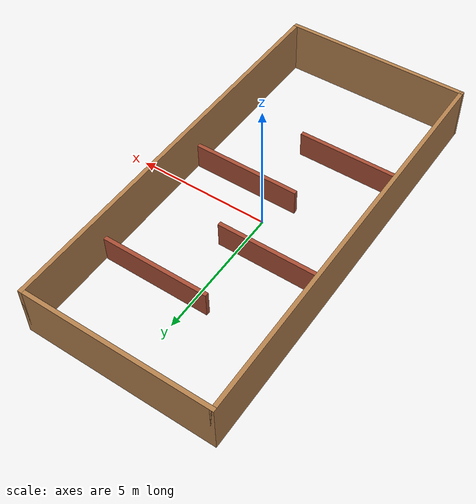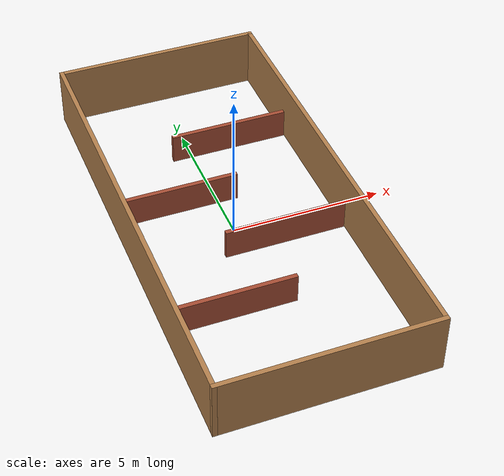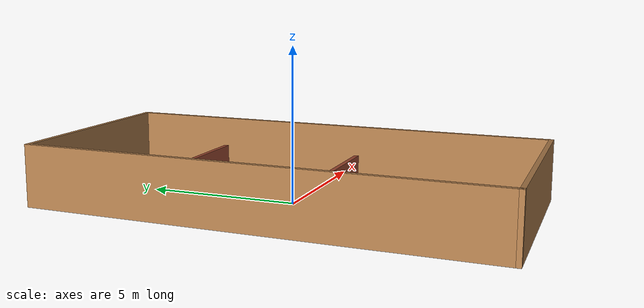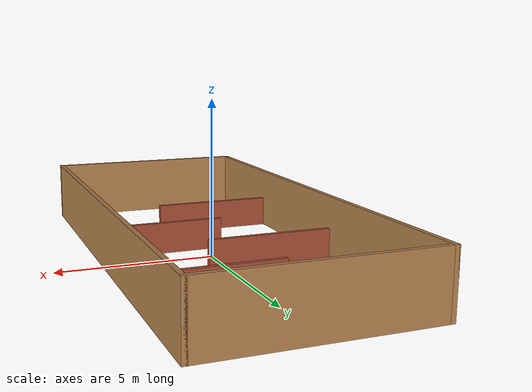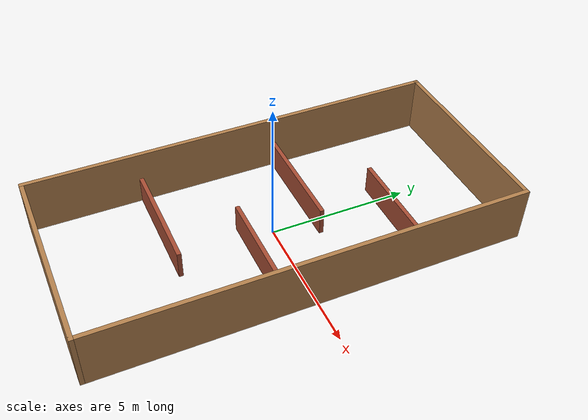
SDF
<?xml version='1.0'?>
<sdf version='1.7'>
  <model name='box_s2'>
    <link name='Wall_26'>
      <pose>-1.33 -3.5 0 0 -0 3.14159</pose>
      <self_collide>0</self_collide>
      <kinematic>0</kinematic>
      <gravity>1</gravity>
      <enable_wind>0</enable_wind>
      <inertial>
        <inertia>
          <ixx>0</ixx>
          <ixy>0</ixy>
          <ixz>0</ixz>
          <iyy>0</iyy>
          <iyz>0</iyz>
          <izz>0</izz>
        </inertia>
        <mass>0</mass>
        <pose>0 0 0 0 -0 0</pose>
      </inertial>
      <visual name='Wall_26_Visual'>
        <pose>0 0 0.5 0 -0 0</pose>
        <geometry>
          <box>
            <size>4 0.15 1</size>
          </box>
        </geometry>
        <material>
          <script>
            <uri>file://media/materials/scripts/gazebo.material</uri>
            <name>Gazebo/Bricks</name>
          </script>
          <ambient>1 1 1 1</ambient>
          <diffuse>1 1 1 1</diffuse>
          <specular>0.2 0.2 0.2 1</specular>
          <emissive>0 0 0 1</emissive>
          <shader type='pixel'>
            <normal_map>__default__</normal_map>
          </shader>
        </material>
        <meta>
          <layer>0</layer>
        </meta>
        <cast_shadows>1</cast_shadows>
        <transparency>0</transparency>
      </visual>
      <collision name='Wall_26_Collision'>
        <laser_retro>0</laser_retro>
        <max_contacts>10</max_contacts>
        <pose>0 0 0.5 0 -0 0</pose>
        <geometry>
          <box>
            <size>4 0.15 1</size>
          </box>
        </geometry>
        <surface>
          <friction>
            <ode>
              <mu>1</mu>
              <mu2>1</mu2>
              <fdir1>0 0 0</fdir1>
              <slip1>0</slip1>
              <slip2>0</slip2>
            </ode>
            <torsional>
              <coefficient>1</coefficient>
              <patch_radius>0</patch_radius>
              <surface_radius>0</surface_radius>
              <use_patch_radius>1</use_patch_radius>
              <ode>
                <slip>0</slip>
              </ode>
            </torsional>
          </friction>
          <bounce>
            <restitution_coefficient>0</restitution_coefficient>
            <threshold>1e+06</threshold>
          </bounce>
          <contact>
            <collide_without_contact>0</collide_without_contact>
            <collide_without_contact_bitmask>1</collide_without_contact_bitmask>
            <collide_bitmask>1</collide_bitmask>
            <ode>
              <soft_cfm>0</soft_cfm>
              <soft_erp>0.2</soft_erp>
              <kp>1e+13</kp>
              <kd>1</kd>
              <max_vel>0.01</max_vel>
              <min_depth>0</min_depth>
            </ode>
            <bullet>
              <split_impulse>1</split_impulse>
              <split_impulse_penetration_threshold>-0.01</split_impulse_penetration_threshold>
              <soft_cfm>0</soft_cfm>
              <soft_erp>0.2</soft_erp>
              <kp>1e+13</kp>
              <kd>1</kd>
            </bullet>
          </contact>
        </surface>
      </collision>
    </link>
    <link name='Wall_24'>
      <pose>-1.33 1.5 0 0 -0 3.14159</pose>
      <self_collide>0</self_collide>
      <kinematic>0</kinematic>
      <gravity>1</gravity>
      <enable_wind>0</enable_wind>
      <inertial>
        <inertia>
          <ixx>0</ixx>
          <ixy>0</ixy>
          <ixz>0</ixz>
          <iyy>0</iyy>
          <iyz>0</iyz>
          <izz>0</izz>
        </inertia>
        <mass>0</mass>
        <pose>0 0 0 0 -0 0</pose>
      </inertial>
      <visual name='Wall_24_Visual'>
        <pose>0 0 0.5 0 -0 0</pose>
        <geometry>
          <box>
            <size>4 0.15 1</size>
          </box>
        </geometry>
        <material>
          <script>
            <uri>file://media/materials/scripts/gazebo.material</uri>
            <name>Gazebo/Bricks</name>
          </script>
          <ambient>1 1 1 1</ambient>
          <diffuse>1 1 1 1</diffuse>
          <specular>0.2 0.2 0.2 1</specular>
          <emissive>0 0 0 1</emissive>
          <shader type='pixel'>
            <normal_map>__default__</normal_map>
          </shader>
        </material>
        <meta>
          <layer>0</layer>
        </meta>
        <cast_shadows>1</cast_shadows>
        <transparency>0</transparency>
      </visual>
      <collision name='Wall_24_Collision'>
        <laser_retro>0</laser_retro>
        <max_contacts>10</max_contacts>
        <pose>0 0 0.5 0 -0 0</pose>
        <geometry>
          <box>
            <size>4 0.15 1</size>
          </box>
        </geometry>
        <surface>
          <friction>
            <ode>
              <mu>1</mu>
              <mu2>1</mu2>
              <fdir1>0 0 0</fdir1>
              <slip1>0</slip1>
              <slip2>0</slip2>
            </ode>
            <torsional>
              <coefficient>1</coefficient>
              <patch_radius>0</patch_radius>
              <surface_radius>0</surface_radius>
              <use_patch_radius>1</use_patch_radius>
              <ode>
                <slip>0</slip>
              </ode>
            </torsional>
          </friction>
          <bounce>
            <restitution_coefficient>0</restitution_coefficient>
            <threshold>1e+06</threshold>
          </bounce>
          <contact>
            <collide_without_contact>0</collide_without_contact>
            <collide_without_contact_bitmask>1</collide_without_contact_bitmask>
            <collide_bitmask>1</collide_bitmask>
            <ode>
              <soft_cfm>0</soft_cfm>
              <soft_erp>0.2</soft_erp>
              <kp>1e+13</kp>
              <kd>1</kd>
              <max_vel>0.01</max_vel>
              <min_depth>0</min_depth>
            </ode>
            <bullet>
              <split_impulse>1</split_impulse>
              <split_impulse_penetration_threshold>-0.01</split_impulse_penetration_threshold>
              <soft_cfm>0</soft_cfm>
              <soft_erp>0.2</soft_erp>
              <kp>1e+13</kp>
              <kd>1</kd>
            </bullet>
          </contact>
        </surface>
      </collision>
    </link>
    <link name='Wall_25'>
      <pose>1.33 -1 0 0 -0 3.14159</pose>
      <self_collide>0</self_collide>
      <kinematic>0</kinematic>
      <gravity>1</gravity>
      <enable_wind>0</enable_wind>
      <inertial>
        <inertia>
          <ixx>0</ixx>
          <ixy>0</ixy>
          <ixz>0</ixz>
          <iyy>0</iyy>
          <iyz>0</iyz>
          <izz>0</izz>
        </inertia>
        <mass>0</mass>
        <pose>0 0 0 0 -0 0</pose>
      </inertial>
      <visual name='Wall_25_Visual'>
        <pose>0 0 0.5 0 -0 0</pose>
        <geometry>
          <box>
            <size>4 0.15 1</size>
          </box>
        </geometry>
        <material>
          <script>
            <uri>file://media/materials/scripts/gazebo.material</uri>
            <name>Gazebo/Bricks</name>
          </script>
          <ambient>1 1 1 1</ambient>
          <diffuse>1 1 1 1</diffuse>
          <specular>0.2 0.2 0.2 1</specular>
          <emissive>0 0 0 1</emissive>
          <shader type='pixel'>
            <normal_map>__default__</normal_map>
          </shader>
        </material>
        <meta>
          <layer>0</layer>
        </meta>
        <cast_shadows>1</cast_shadows>
        <transparency>0</transparency>
      </visual>
      <collision name='Wall_25_Collision'>
        <laser_retro>0</laser_retro>
        <max_contacts>10</max_contacts>
        <pose>0 0 0.5 0 -0 0</pose>
        <geometry>
          <box>
            <size>4 0.15 1</size>
          </box>
        </geometry>
        <surface>
          <friction>
            <ode>
              <mu>1</mu>
              <mu2>1</mu2>
              <fdir1>0 0 0</fdir1>
              <slip1>0</slip1>
              <slip2>0</slip2>
            </ode>
            <torsional>
              <coefficient>1</coefficient>
              <patch_radius>0</patch_radius>
              <surface_radius>0</surface_radius>
              <use_patch_radius>1</use_patch_radius>
              <ode>
                <slip>0</slip>
              </ode>
            </torsional>
          </friction>
          <bounce>
            <restitution_coefficient>0</restitution_coefficient>
            <threshold>1e+06</threshold>
          </bounce>
          <contact>
            <collide_without_contact>0</collide_without_contact>
            <collide_without_contact_bitmask>1</collide_without_contact_bitmask>
            <collide_bitmask>1</collide_bitmask>
            <ode>
              <soft_cfm>0</soft_cfm>
              <soft_erp>0.2</soft_erp>
              <kp>1e+13</kp>
              <kd>1</kd>
              <max_vel>0.01</max_vel>
              <min_depth>0</min_depth>
            </ode>
            <bullet>
              <split_impulse>1</split_impulse>
              <split_impulse_penetration_threshold>-0.01</split_impulse_penetration_threshold>
              <soft_cfm>0</soft_cfm>
              <soft_erp>0.2</soft_erp>
              <kp>1e+13</kp>
              <kd>1</kd>
            </bullet>
          </contact>
        </surface>
      </collision>
    </link>
    <link name='Wall_27'>
      <pose>1.33 4 0 0 -0 3.14159</pose>
      <self_collide>0</self_collide>
      <kinematic>0</kinematic>
      <gravity>1</gravity>
      <enable_wind>0</enable_wind>
      <inertial>
        <inertia>
          <ixx>0</ixx>
          <ixy>0</ixy>
          <ixz>0</ixz>
          <iyy>0</iyy>
          <iyz>0</iyz>
          <izz>0</izz>
        </inertia>
        <mass>0</mass>
        <pose>0 0 0 0 -0 0</pose>
      </inertial>
      <visual name='Wall_27_Visual'>
        <pose>0 0 0.5 0 -0 0</pose>
        <geometry>
          <box>
            <size>4 0.15 1</size>
          </box>
        </geometry>
        <material>
          <script>
            <uri>file://media/materials/scripts/gazebo.material</uri>
            <name>Gazebo/Bricks</name>
          </script>
          <ambient>1 1 1 1</ambient>
          <diffuse>1 1 1 1</diffuse>
          <specular>0.2 0.2 0.2 1</specular>
          <emissive>0 0 0 1</emissive>
          <shader type='pixel'>
            <normal_map>__default__</normal_map>
          </shader>
        </material>
        <meta>
          <layer>0</layer>
        </meta>
        <cast_shadows>1</cast_shadows>
        <transparency>0</transparency>
      </visual>
      <collision name='Wall_27_Collision'>
        <laser_retro>0</laser_retro>
        <max_contacts>10</max_contacts>
        <pose>0 0 0.5 0 -0 0</pose>
        <geometry>
          <box>
            <size>4 0.15 1</size>
          </box>
        </geometry>
        <surface>
          <friction>
            <ode>
              <mu>1</mu>
              <mu2>1</mu2>
              <fdir1>0 0 0</fdir1>
              <slip1>0</slip1>
              <slip2>0</slip2>
            </ode>
            <torsional>
              <coefficient>1</coefficient>
              <patch_radius>0</patch_radius>
              <surface_radius>0</surface_radius>
              <use_patch_radius>1</use_patch_radius>
              <ode>
                <slip>0</slip>
              </ode>
            </torsional>
          </friction>
          <bounce>
            <restitution_coefficient>0</restitution_coefficient>
            <threshold>1e+06</threshold>
          </bounce>
          <contact>
            <collide_without_contact>0</collide_without_contact>
            <collide_without_contact_bitmask>1</collide_without_contact_bitmask>
            <collide_bitmask>1</collide_bitmask>
            <ode>
              <soft_cfm>0</soft_cfm>
              <soft_erp>0.2</soft_erp>
              <kp>1e+13</kp>
              <kd>1</kd>
              <max_vel>0.01</max_vel>
              <min_depth>0</min_depth>
            </ode>
            <bullet>
              <split_impulse>1</split_impulse>
              <split_impulse_penetration_threshold>-0.01</split_impulse_penetration_threshold>
              <soft_cfm>0</soft_cfm>
              <soft_erp>0.2</soft_erp>
              <kp>1e+13</kp>
              <kd>1</kd>
            </bullet>
          </contact>
        </surface>
      </collision>
    </link>
    <link name='Wall_6'>
      <pose>0 7.425 0 0 -0 0</pose>
      <self_collide>0</self_collide>
      <kinematic>0</kinematic>
      <gravity>1</gravity>
      <enable_wind>0</enable_wind>
      <inertial>
        <mass>1</mass>
        <pose>0 0 0 0 -0 0</pose>
        <inertia>
          <ixx>1</ixx>
          <ixy>0</ixy>
          <ixz>0</ixz>
          <iyy>1</iyy>
          <iyz>0</iyz>
          <izz>1</izz>
        </inertia>
      </inertial>
      <visual name='Wall_6_Visual'>
        <pose>0 0 1 0 -0 0</pose>
        <geometry>
          <box>
            <size>7 0.15 2</size>
          </box>
        </geometry>
        <material>
          <script>
            <uri>file://media/materials/scripts/gazebo.material</uri>
            <name>Gazebo/Wood</name>
          </script>
          <ambient>1 1 1 1</ambient>
          <diffuse>1 1 1 1</diffuse>
          <specular>0.2 0.2 0.2 1</specular>
          <emissive>0 0 0 1</emissive>
          <shader type='pixel'>
            <normal_map>__default__</normal_map>
          </shader>
        </material>
        <meta>
          <layer>0</layer>
        </meta>
        <cast_shadows>1</cast_shadows>
        <transparency>0</transparency>
      </visual>
      <collision name='Wall_6_Collision'>
        <laser_retro>0</laser_retro>
        <max_contacts>10</max_contacts>
        <pose>0 0 1 0 -0 0</pose>
        <geometry>
          <box>
            <size>7 0.15 2</size>
          </box>
        </geometry>
        <surface>
          <friction>
            <ode>
              <mu>1</mu>
              <mu2>1</mu2>
              <fdir1>0 0 0</fdir1>
              <slip1>0</slip1>
              <slip2>0</slip2>
            </ode>
            <torsional>
              <coefficient>1</coefficient>
              <patch_radius>0</patch_radius>
              <surface_radius>0</surface_radius>
              <use_patch_radius>1</use_patch_radius>
              <ode>
                <slip>0</slip>
              </ode>
            </torsional>
          </friction>
          <bounce>
            <restitution_coefficient>0</restitution_coefficient>
            <threshold>1e+06</threshold>
          </bounce>
          <contact>
            <collide_without_contact>0</collide_without_contact>
            <collide_without_contact_bitmask>1</collide_without_contact_bitmask>
            <collide_bitmask>1</collide_bitmask>
            <ode>
              <soft_cfm>0</soft_cfm>
              <soft_erp>0.2</soft_erp>
              <kp>1e+13</kp>
              <kd>1</kd>
              <max_vel>0.01</max_vel>
              <min_depth>0</min_depth>
            </ode>
            <bullet>
              <split_impulse>1</split_impulse>
              <split_impulse_penetration_threshold>-0.01</split_impulse_penetration_threshold>
              <soft_cfm>0</soft_cfm>
              <soft_erp>0.2</soft_erp>
              <kp>1e+13</kp>
              <kd>1</kd>
            </bullet>
          </contact>
        </surface>
      </collision>
    </link>
    <link name='Wall_7'>
      <pose>3.425 0 0 0 0 -1.5708</pose>
      <self_collide>0</self_collide>
      <kinematic>0</kinematic>
      <gravity>1</gravity>
      <enable_wind>0</enable_wind>
      <inertial>
        <mass>1</mass>
        <pose>0 0 0 0 -0 0</pose>
        <inertia>
          <ixx>1</ixx>
          <ixy>0</ixy>
          <ixz>0</ixz>
          <iyy>1</iyy>
          <iyz>0</iyz>
          <izz>1</izz>
        </inertia>
      </inertial>
      <visual name='Wall_7_Visual'>
        <pose>0 0 1 0 -0 0</pose>
        <geometry>
          <box>
            <size>15 0.15 2</size>
          </box>
        </geometry>
        <material>
          <script>
            <uri>file://media/materials/scripts/gazebo.material</uri>
            <name>Gazebo/Wood</name>
          </script>
          <ambient>1 1 1 1</ambient>
          <diffuse>1 1 1 1</diffuse>
          <specular>0.2 0.2 0.2 1</specular>
          <emissive>0 0 0 1</emissive>
          <shader type='pixel'>
            <normal_map>__default__</normal_map>
          </shader>
        </material>
        <meta>
          <layer>0</layer>
        </meta>
        <cast_shadows>1</cast_shadows>
        <transparency>0</transparency>
      </visual>
      <collision name='Wall_7_Collision'>
        <laser_retro>0</laser_retro>
        <max_contacts>10</max_contacts>
        <pose>0 0 1 0 -0 0</pose>
        <geometry>
          <box>
            <size>15 0.15 2</size>
          </box>
        </geometry>
        <surface>
          <friction>
            <ode>
              <mu>1</mu>
              <mu2>1</mu2>
              <fdir1>0 0 0</fdir1>
              <slip1>0</slip1>
              <slip2>0</slip2>
            </ode>
            <torsional>
              <coefficient>1</coefficient>
              <patch_radius>0</patch_radius>
              <surface_radius>0</surface_radius>
              <use_patch_radius>1</use_patch_radius>
              <ode>
                <slip>0</slip>
              </ode>
            </torsional>
          </friction>
          <bounce>
            <restitution_coefficient>0</restitution_coefficient>
            <threshold>1e+06</threshold>
          </bounce>
          <contact>
            <collide_without_contact>0</collide_without_contact>
            <collide_without_contact_bitmask>1</collide_without_contact_bitmask>
            <collide_bitmask>1</collide_bitmask>
            <ode>
              <soft_cfm>0</soft_cfm>
              <soft_erp>0.2</soft_erp>
              <kp>1e+13</kp>
              <kd>1</kd>
              <max_vel>0.01</max_vel>
              <min_depth>0</min_depth>
            </ode>
            <bullet>
              <split_impulse>1</split_impulse>
              <split_impulse_penetration_threshold>-0.01</split_impulse_penetration_threshold>
              <soft_cfm>0</soft_cfm>
              <soft_erp>0.2</soft_erp>
              <kp>1e+13</kp>
              <kd>1</kd>
            </bullet>
          </contact>
        </surface>
      </collision>
    </link>
    <link name='Wall_8'>
      <pose>0 -7.425 0 0 -0 3.14159</pose>
      <self_collide>0</self_collide>
      <kinematic>0</kinematic>
      <gravity>1</gravity>
      <enable_wind>0</enable_wind>
      <inertial>
        <mass>1</mass>
        <pose>0 0 0 0 -0 0</pose>
        <inertia>
          <ixx>1</ixx>
          <ixy>0</ixy>
          <ixz>0</ixz>
          <iyy>1</iyy>
          <iyz>0</iyz>
          <izz>1</izz>
        </inertia>
      </inertial>
      <visual name='Wall_8_Visual'>
        <pose>0 0 1 0 -0 0</pose>
        <geometry>
          <box>
            <size>7 0.15 2</size>
          </box>
        </geometry>
        <material>
          <script>
            <uri>file://media/materials/scripts/gazebo.material</uri>
            <name>Gazebo/Wood</name>
          </script>
          <ambient>1 1 1 1</ambient>
          <diffuse>1 1 1 1</diffuse>
          <specular>0.2 0.2 0.2 1</specular>
          <emissive>0 0 0 1</emissive>
          <shader type='pixel'>
            <normal_map>__default__</normal_map>
          </shader>
        </material>
        <meta>
          <layer>0</layer>
        </meta>
        <cast_shadows>1</cast_shadows>
        <transparency>0</transparency>
      </visual>
      <collision name='Wall_8_Collision'>
        <laser_retro>0</laser_retro>
        <max_contacts>10</max_contacts>
        <pose>0 0 1 0 -0 0</pose>
        <geometry>
          <box>
            <size>7 0.15 2</size>
          </box>
        </geometry>
        <surface>
          <friction>
            <ode>
              <mu>1</mu>
              <mu2>1</mu2>
              <fdir1>0 0 0</fdir1>
              <slip1>0</slip1>
              <slip2>0</slip2>
            </ode>
            <torsional>
              <coefficient>1</coefficient>
              <patch_radius>0</patch_radius>
              <surface_radius>0</surface_radius>
              <use_patch_radius>1</use_patch_radius>
              <ode>
                <slip>0</slip>
              </ode>
            </torsional>
          </friction>
          <bounce>
            <restitution_coefficient>0</restitution_coefficient>
            <threshold>1e+06</threshold>
          </bounce>
          <contact>
            <collide_without_contact>0</collide_without_contact>
            <collide_without_contact_bitmask>1</collide_without_contact_bitmask>
            <collide_bitmask>1</collide_bitmask>
            <ode>
              <soft_cfm>0</soft_cfm>
              <soft_erp>0.2</soft_erp>
              <kp>1e+13</kp>
              <kd>1</kd>
              <max_vel>0.01</max_vel>
              <min_depth>0</min_depth>
            </ode>
            <bullet>
              <split_impulse>1</split_impulse>
              <split_impulse_penetration_threshold>-0.01</split_impulse_penetration_threshold>
              <soft_cfm>0</soft_cfm>
              <soft_erp>0.2</soft_erp>
              <kp>1e+13</kp>
              <kd>1</kd>
            </bullet>
          </contact>
        </surface>
      </collision>
    </link>
    <link name='Wall_9'>
      <pose>-3.425 0 0 0 -0 1.5708</pose>
      <self_collide>0</self_collide>
      <kinematic>0</kinematic>
      <gravity>1</gravity>
      <enable_wind>0</enable_wind>
      <inertial>
        <mass>1</mass>
        <pose>0 0 0 0 -0 0</pose>
        <inertia>
          <ixx>1</ixx>
          <ixy>0</ixy>
          <ixz>0</ixz>
          <iyy>1</iyy>
          <iyz>0</iyz>
          <izz>1</izz>
        </inertia>
      </inertial>
      <visual name='Wall_9_Visual'>
        <pose>0 0 1 0 -0 0</pose>
        <geometry>
          <box>
            <size>15 0.15 2</size>
          </box>
        </geometry>
        <material>
          <script>
            <uri>file://media/materials/scripts/gazebo.material</uri>
            <name>Gazebo/Wood</name>
          </script>
          <ambient>1 1 1 1</ambient>
          <diffuse>1 1 1 1</diffuse>
          <specular>0.2 0.2 0.2 1</specular>
          <emissive>0 0 0 1</emissive>
          <shader type='pixel'>
            <normal_map>__default__</normal_map>
          </shader>
        </material>
        <meta>
          <layer>0</layer>
        </meta>
        <cast_shadows>1</cast_shadows>
        <transparency>0</transparency>
      </visual>
      <collision name='Wall_9_Collision'>
        <laser_retro>0</laser_retro>
        <max_contacts>10</max_contacts>
        <pose>0 0 1 0 -0 0</pose>
        <geometry>
          <box>
            <size>15 0.15 2</size>
          </box>
        </geometry>
        <surface>
          <friction>
            <ode>
              <mu>1</mu>
              <mu2>1</mu2>
              <fdir1>0 0 0</fdir1>
              <slip1>0</slip1>
              <slip2>0</slip2>
            </ode>
            <torsional>
              <coefficient>1</coefficient>
              <patch_radius>0</patch_radius>
              <surface_radius>0</surface_radius>
              <use_patch_radius>1</use_patch_radius>
              <ode>
                <slip>0</slip>
              </ode>
            </torsional>
          </friction>
          <bounce>
            <restitution_coefficient>0</restitution_coefficient>
            <threshold>1e+06</threshold>
          </bounce>
          <contact>
            <collide_without_contact>0</collide_without_contact>
            <collide_without_contact_bitmask>1</collide_without_contact_bitmask>
            <collide_bitmask>1</collide_bitmask>
            <ode>
              <soft_cfm>0</soft_cfm>
              <soft_erp>0.2</soft_erp>
              <kp>1e+13</kp>
              <kd>1</kd>
              <max_vel>0.01</max_vel>
              <min_depth>0</min_depth>
            </ode>
            <bullet>
              <split_impulse>1</split_impulse>
              <split_impulse_penetration_threshold>-0.01</split_impulse_penetration_threshold>
              <soft_cfm>0</soft_cfm>
              <soft_erp>0.2</soft_erp>
              <kp>1e+13</kp>
              <kd>1</kd>
            </bullet>
          </contact>
        </surface>
      </collision>
    </link>
    <static>1</static>
    <allow_auto_disable>1</allow_auto_disable>
  </model>
</sdf>
